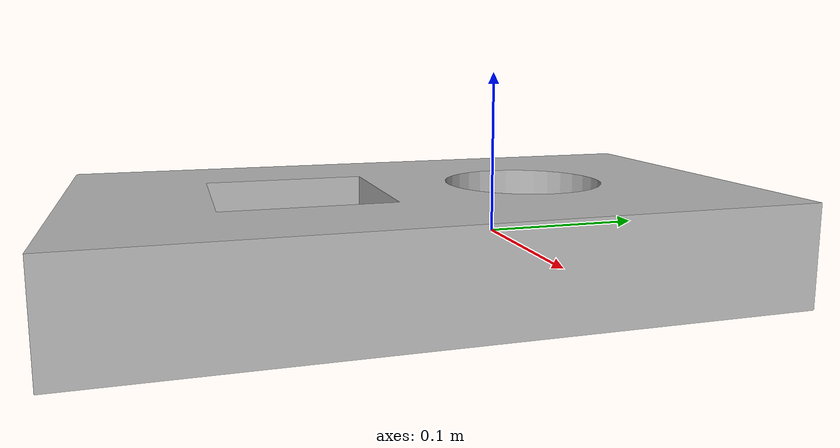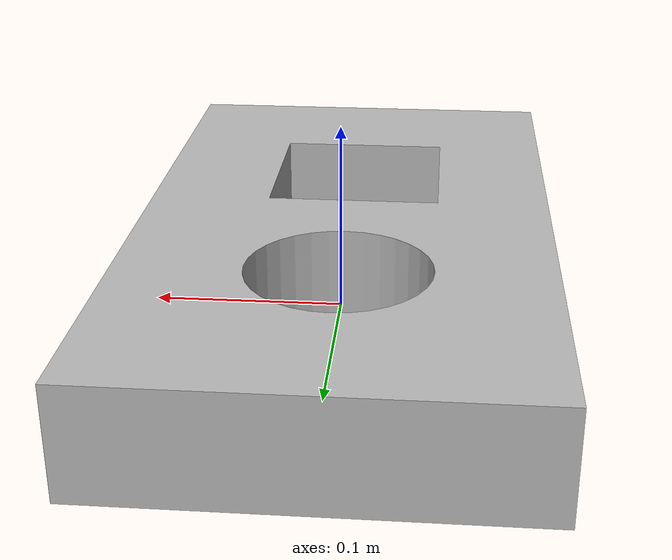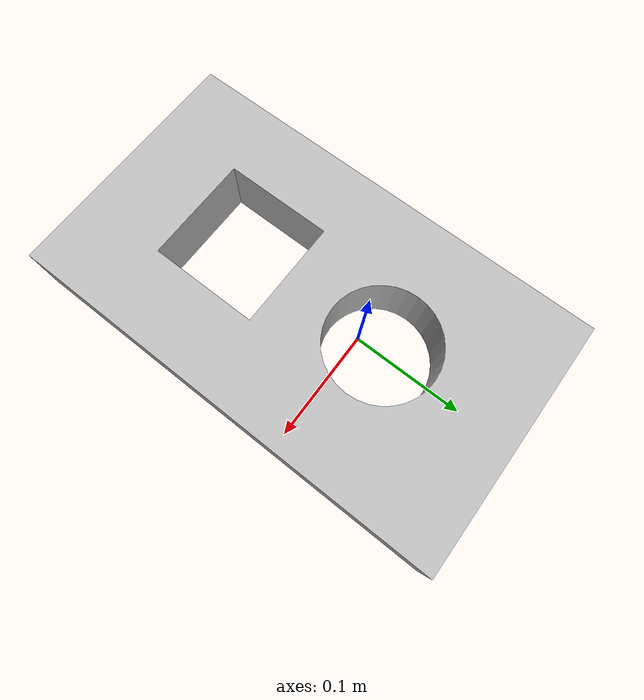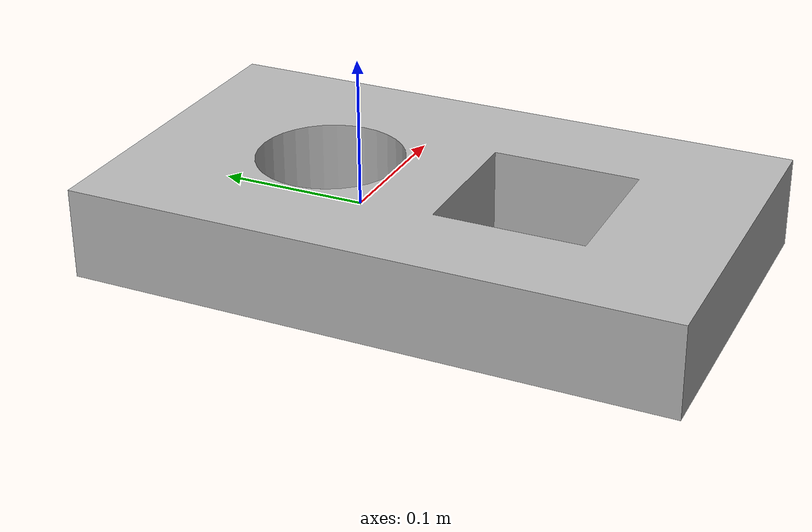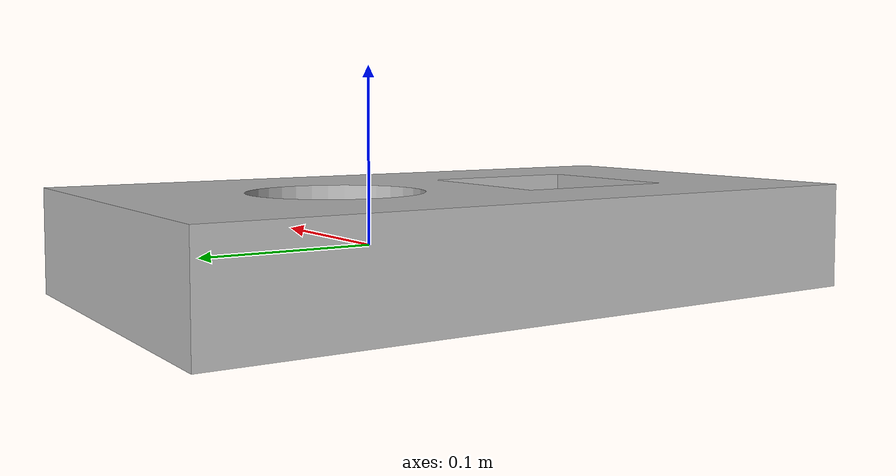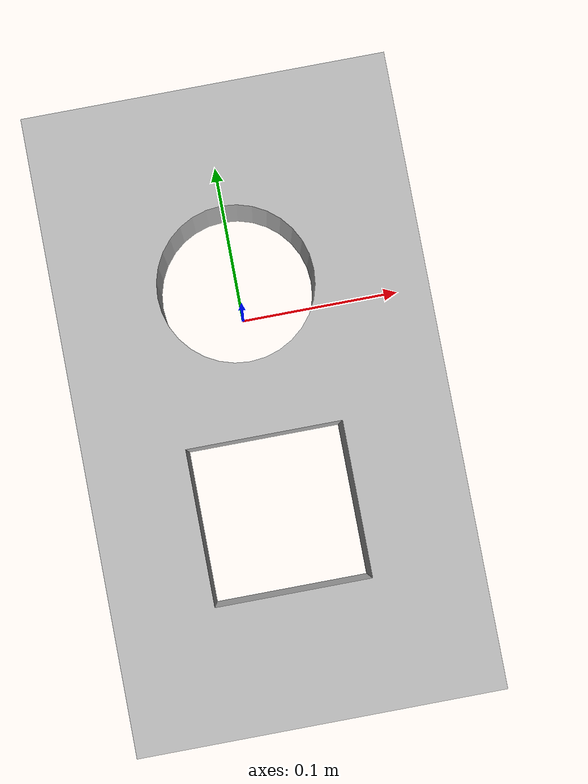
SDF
<?xml version="1.0"?>
<sdf version="1.3">
  <model name="Peg Board">
    <static>true</static>
    <link name="link">
      <pose>0 0 0 0 0 0</pose>
      <collision name="collision">
        <geometry>
          <mesh>
            <uri>model://pegboard/meshes/pegboard.dae</uri>
          </mesh>
        </geometry>
      </collision>
      <visual name="visual">
        <geometry>
          <mesh>
            <uri>model://pegboard/meshes/pegboard.dae</uri>
            <scale>0.33 0.33 1.0</scale>
          </mesh>
        </geometry>
      </visual>
    </link>
  </model>
</sdf>
